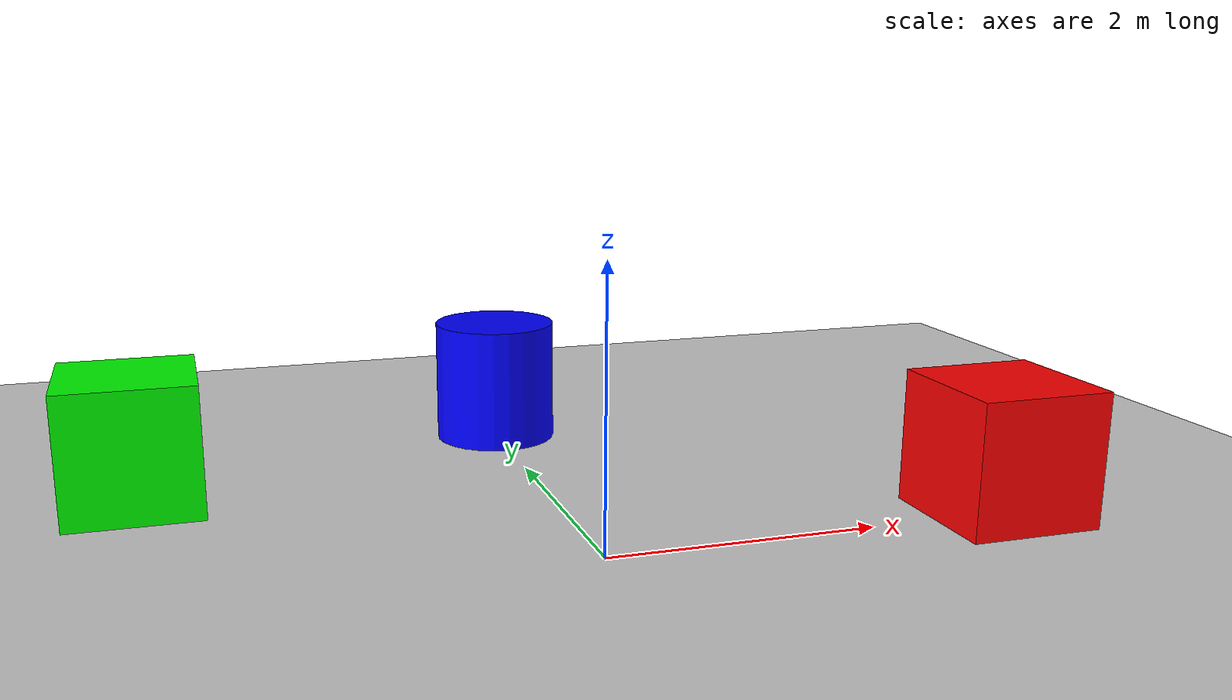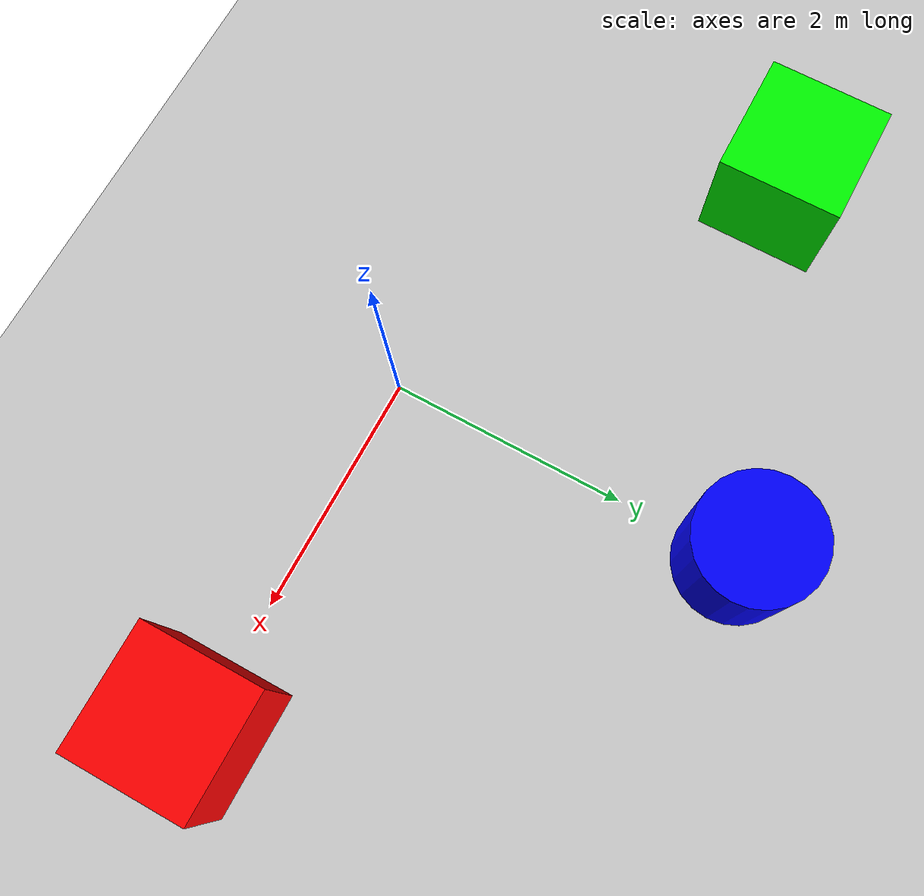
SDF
<?xml version="1.0" ?>
<sdf version="1.8">
  <world name="simple_world">

    <!-- Physics -->
    <physics name="1ms" type="ignored">
      <max_step_size>0.001</max_step_size>
      <real_time_factor>1.0</real_time_factor>
    </physics>

    <!-- Scene -->
    <scene>
      <ambient>0.4 0.4 0.4 1.0</ambient>
      <background>0.7 0.7 0.7 1.0</background>
      <shadows>true</shadows>
    </scene>

    <!-- Sun -->
    <light name="sun" type="directional">
      <cast_shadows>true</cast_shadows>
      <pose>0 0 10 0 0 0</pose>
      <diffuse>0.8 0.8 0.8 1</diffuse>
      <specular>0.2 0.2 0.2 1</specular>
      <direction>-0.5 0.1 -0.9</direction>
    </light>

    <!-- Ground plane -->
    <model name="ground_plane">
      <static>true</static>
      <link name="link">
        <collision name="collision">
          <geometry>
            <plane>
              <normal>0 0 1</normal>
              <size>100 100</size>
            </plane>
          </geometry>
        </collision>
        <visual name="visual">
          <geometry>
            <plane>
              <normal>0 0 1</normal>
              <size>100 100</size>
            </plane>
          </geometry>
          <material>
            <ambient>0.8 0.8 0.8 1</ambient>
            <diffuse>0.8 0.8 0.8 1</diffuse>
            <specular>0.8 0.8 0.8 1</specular>
          </material>
        </visual>
      </link>
    </model>

    <!-- Some obstacles -->
    <model name="box1">
      <pose>3 0 0.5 0 0 0</pose>
      <link name="link">
        <collision name="collision">
          <geometry>
            <box>
              <size>1 1 1</size>
            </box>
          </geometry>
        </collision>
        <visual name="visual">
          <geometry>
            <box>
              <size>1 1 1</size>
            </box>
          </geometry>
          <material>
            <ambient>1 0 0 1</ambient>
            <diffuse>1 0 0 1</diffuse>
          </material>
        </visual>
      </link>
    </model>

    <model name="box2">
      <pose>-3 2 0.5 0 0 0</pose>
      <link name="link">
        <collision name="collision">
          <geometry>
            <box>
              <size>1 1 1</size>
            </box>
          </geometry>
        </collision>
        <visual name="visual">
          <geometry>
            <box>
              <size>1 1 1</size>
            </box>
          </geometry>
          <material>
            <ambient>0 1 0 1</ambient>
            <diffuse>0 1 0 1</diffuse>
          </material>
        </visual>
      </link>
    </model>

    <model name="cylinder1">
      <pose>0 3 0.5 0 0 0</pose>
      <link name="link">
        <collision name="collision">
          <geometry>
            <cylinder>
              <radius>0.5</radius>
              <length>1</length>
            </cylinder>
          </geometry>
        </collision>
        <visual name="visual">
          <geometry>
            <cylinder>
              <radius>0.5</radius>
              <length>1</length>
            </cylinder>
          </geometry>
          <material>
            <ambient>0 0 1 1</ambient>
            <diffuse>0 0 1 1</diffuse>
          </material>
        </visual>
      </link>
    </model>

  </world>
</sdf>
